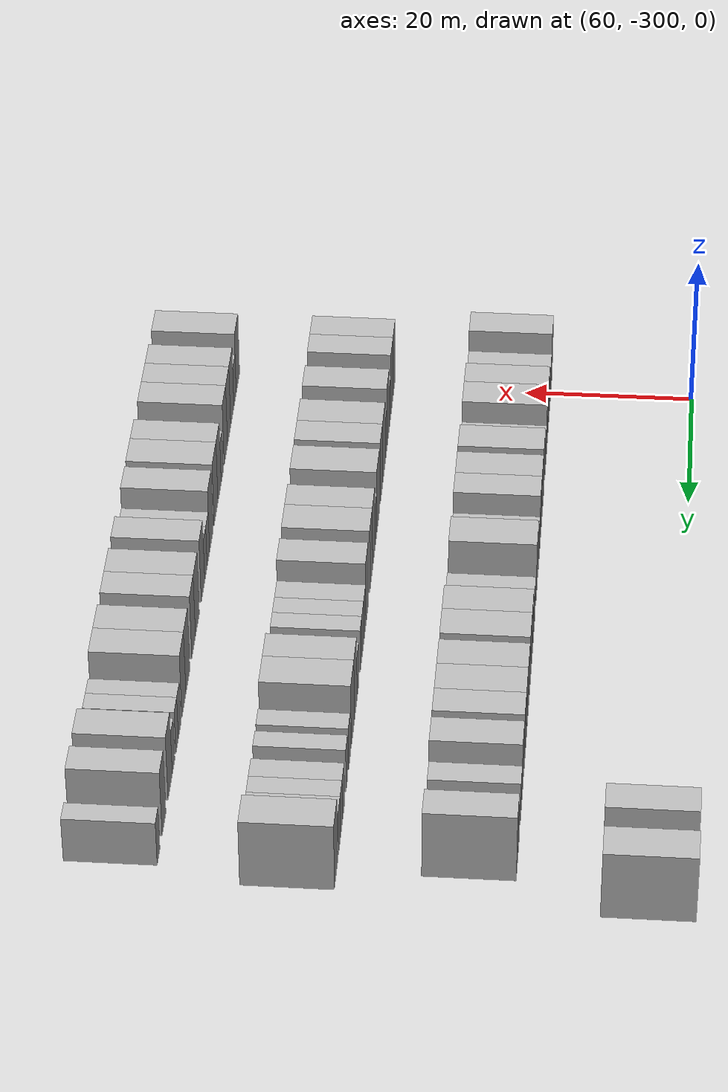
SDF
<sdf version="1.6">
 <world name="default">
  <model name="building_390">
   <static>1</static>
   <pose>63.0000 -218.8169 0 0.000000 0.000000 0.000000</pose>
   <link name="link">
    <pose>0 0 4.50 0 0 0</pose>
    <collision name="collision"><geometry><box><size>10.0000 3.7445 9.0000</size></box></geometry></collision>
    <visual name="visual">
     <cast_shadows>0</cast_shadows>
     <geometry><box><size>10.0000 3.7445 9.0000</size></box></geometry>
     <material>
      <script>
       <uri>model://HANNAS_wall/materials/scripts</uri>
       <uri>model://HANNAS_wall/materials/textures</uri>
       <name>vrc/HANNAS_wall</name>
      </script>
     </material>
    </visual>
   </link>
  </model>
  <model name="building_391">
   <static>1</static>
   <pose>63.0000 -215.5058 0 0.000000 0.000000 0.000000</pose>
   <link name="link">
    <pose>0 0 3.00 0 0 0</pose>
    <collision name="collision"><geometry><box><size>10.0000 2.8776 6.0000</size></box></geometry></collision>
    <visual name="visual">
     <cast_shadows>0</cast_shadows>
     <geometry><box><size>10.0000 2.8776 6.0000</size></box></geometry>
     <material>
      <script>
       <uri>model://HANNAS_wall/materials/scripts</uri>
       <uri>model://HANNAS_wall/materials/textures</uri>
       <name>vrc/HANNAS_wall</name>
      </script>
     </material>
    </visual>
   </link>
  </model>
  <model name="building_392">
   <static>1</static>
   <pose>63.0000 -211.9259 0 0.000000 0.000000 0.000000</pose>
   <link name="link">
    <pose>0 0 4.50 0 0 0</pose>
    <collision name="collision"><geometry><box><size>10.0000 4.2823 9.0000</size></box></geometry></collision>
    <visual name="visual">
     <cast_shadows>0</cast_shadows>
     <geometry><box><size>10.0000 4.2823 9.0000</size></box></geometry>
     <material>
      <script>
       <uri>model://HANNAS_wall/materials/scripts</uri>
       <uri>model://HANNAS_wall/materials/textures</uri>
       <name>vrc/HANNAS_wall</name>
      </script>
     </material>
    </visual>
   </link>
  </model>
  <model name="building_545">
   <static>1</static>
   <pose>82.0000 -301.8834 0 0.000000 0.000000 0.000000</pose>
   <link name="link">
    <pose>0 0 4.50 0 0 0</pose>
    <collision name="collision"><geometry><box><size>10.0000 3.8619 9.0000</size></box></geometry></collision>
    <visual name="visual">
     <cast_shadows>0</cast_shadows>
     <geometry><box><size>10.0000 3.8619 9.0000</size></box></geometry>
     <material>
      <script>
       <uri>model://HANNAS_wall/materials/scripts</uri>
       <uri>model://HANNAS_wall/materials/textures</uri>
       <name>vrc/HANNAS_wall</name>
      </script>
     </material>
    </visual>
   </link>
  </model>
  <model name="building_546">
   <static>1</static>
   <pose>82.0000 -298.6246 0 0.000000 0.000000 0.000000</pose>
   <link name="link">
    <pose>0 0 3.00 0 0 0</pose>
    <collision name="collision"><geometry><box><size>10.0000 2.6557 6.0000</size></box></geometry></collision>
    <visual name="visual">
     <cast_shadows>0</cast_shadows>
     <geometry><box><size>10.0000 2.6557 6.0000</size></box></geometry>
     <material>
      <script>
       <uri>model://HANNAS_wall/materials/scripts</uri>
       <uri>model://HANNAS_wall/materials/textures</uri>
       <name>vrc/HANNAS_wall</name>
      </script>
     </material>
    </visual>
   </link>
  </model>
  <model name="building_547">
   <static>1</static>
   <pose>82.0000 -294.8843 0 0.000000 0.000000 0.000000</pose>
   <link name="link">
    <pose>0 0 3.00 0 0 0</pose>
    <collision name="collision"><geometry><box><size>10.0000 2.8249 6.0000</size></box></geometry></collision>
    <visual name="visual">
     <cast_shadows>0</cast_shadows>
     <geometry><box><size>10.0000 2.8249 6.0000</size></box></geometry>
     <material>
      <script>
       <uri>model://HANNAS_wall/materials/scripts</uri>
       <uri>model://HANNAS_wall/materials/textures</uri>
       <name>vrc/HANNAS_wall</name>
      </script>
     </material>
    </visual>
   </link>
  </model>
  <model name="building_548">
   <static>1</static>
   <pose>82.0000 -291.6672 0 0.000000 0.000000 0.000000</pose>
   <link name="link">
    <pose>0 0 4.50 0 0 0</pose>
    <collision name="collision"><geometry><box><size>10.0000 3.6095 9.0000</size></box></geometry></collision>
    <visual name="visual">
     <cast_shadows>0</cast_shadows>
     <geometry><box><size>10.0000 3.6095 9.0000</size></box></geometry>
     <material>
      <script>
       <uri>model://HANNAS_wall/materials/scripts</uri>
       <uri>model://HANNAS_wall/materials/textures</uri>
       <name>vrc/HANNAS_wall</name>
      </script>
     </material>
    </visual>
   </link>
  </model>
  <model name="building_549">
   <static>1</static>
   <pose>82.0000 -287.8547 0 0.000000 0.000000 0.000000</pose>
   <link name="link">
    <pose>0 0 4.50 0 0 0</pose>
    <collision name="collision"><geometry><box><size>10.0000 4.0154 9.0000</size></box></geometry></collision>
    <visual name="visual">
     <cast_shadows>0</cast_shadows>
     <geometry><box><size>10.0000 4.0154 9.0000</size></box></geometry>
     <material>
      <script>
       <uri>model://HANNAS_wall/materials/scripts</uri>
       <uri>model://HANNAS_wall/materials/textures</uri>
       <name>vrc/HANNAS_wall</name>
      </script>
     </material>
    </visual>
   </link>
  </model>
  <model name="building_550">
   <static>1</static>
   <pose>82.0000 -284.6406 0 0.000000 0.000000 0.000000</pose>
   <link name="link">
    <pose>0 0 3.00 0 0 0</pose>
    <collision name="collision"><geometry><box><size>10.0000 2.4128 6.0000</size></box></geometry></collision>
    <visual name="visual">
     <cast_shadows>0</cast_shadows>
     <geometry><box><size>10.0000 2.4128 6.0000</size></box></geometry>
     <material>
      <script>
       <uri>model://HANNAS_wall/materials/scripts</uri>
       <uri>model://HANNAS_wall/materials/textures</uri>
       <name>vrc/HANNAS_wall</name>
      </script>
     </material>
    </visual>
   </link>
  </model>
  <model name="building_551">
   <static>1</static>
   <pose>82.0000 -279.3819 0 0.000000 0.000000 0.000000</pose>
   <link name="link">
    <pose>0 0 4.50 0 0 0</pose>
    <collision name="collision"><geometry><box><size>10.0000 4.1046 9.0000</size></box></geometry></collision>
    <visual name="visual">
     <cast_shadows>0</cast_shadows>
     <geometry><box><size>10.0000 4.1046 9.0000</size></box></geometry>
     <material>
      <script>
       <uri>model://HANNAS_wall/materials/scripts</uri>
       <uri>model://HANNAS_wall/materials/textures</uri>
       <name>vrc/HANNAS_wall</name>
      </script>
     </material>
    </visual>
   </link>
  </model>
  <model name="building_552">
   <static>1</static>
   <pose>82.0000 -274.3489 0 0.000000 0.000000 0.000000</pose>
   <link name="link">
    <pose>0 0 4.50 0 0 0</pose>
    <collision name="collision"><geometry><box><size>10.0000 3.9613 9.0000</size></box></geometry></collision>
    <visual name="visual">
     <cast_shadows>0</cast_shadows>
     <geometry><box><size>10.0000 3.9613 9.0000</size></box></geometry>
     <material>
      <script>
       <uri>model://HANNAS_wall/materials/scripts</uri>
       <uri>model://HANNAS_wall/materials/textures</uri>
       <name>vrc/HANNAS_wall</name>
      </script>
     </material>
    </visual>
   </link>
  </model>
  <model name="building_553">
   <static>1</static>
   <pose>82.0000 -270.5108 0 0.000000 0.000000 0.000000</pose>
   <link name="link">
    <pose>0 0 4.50 0 0 0</pose>
    <collision name="collision"><geometry><box><size>10.0000 3.7148 9.0000</size></box></geometry></collision>
    <visual name="visual">
     <cast_shadows>0</cast_shadows>
     <geometry><box><size>10.0000 3.7148 9.0000</size></box></geometry>
     <material>
      <script>
       <uri>model://HANNAS_wall/materials/scripts</uri>
       <uri>model://HANNAS_wall/materials/textures</uri>
       <name>vrc/HANNAS_wall</name>
      </script>
     </material>
    </visual>
   </link>
  </model>
  <model name="building_554">
   <static>1</static>
   <pose>82.0000 -267.4466 0 0.000000 0.000000 0.000000</pose>
   <link name="link">
    <pose>0 0 3.00 0 0 0</pose>
    <collision name="collision"><geometry><box><size>10.0000 2.4137 6.0000</size></box></geometry></collision>
    <visual name="visual">
     <cast_shadows>0</cast_shadows>
     <geometry><box><size>10.0000 2.4137 6.0000</size></box></geometry>
     <material>
      <script>
       <uri>model://HANNAS_wall/materials/scripts</uri>
       <uri>model://HANNAS_wall/materials/textures</uri>
       <name>vrc/HANNAS_wall</name>
      </script>
     </material>
    </visual>
   </link>
  </model>
  <model name="building_555">
   <static>1</static>
   <pose>82.0000 -262.0248 0 0.000000 0.000000 0.000000</pose>
   <link name="link">
    <pose>0 0 4.50 0 0 0</pose>
    <collision name="collision"><geometry><box><size>10.0000 4.4298 9.0000</size></box></geometry></collision>
    <visual name="visual">
     <cast_shadows>0</cast_shadows>
     <geometry><box><size>10.0000 4.4298 9.0000</size></box></geometry>
     <material>
      <script>
       <uri>model://HANNAS_wall/materials/scripts</uri>
       <uri>model://HANNAS_wall/materials/textures</uri>
       <name>vrc/HANNAS_wall</name>
      </script>
     </material>
    </visual>
   </link>
  </model>
  <model name="building_556">
   <static>1</static>
   <pose>82.0000 -256.3978 0 0.000000 0.000000 0.000000</pose>
   <link name="link">
    <pose>0 0 3.00 0 0 0</pose>
    <collision name="collision"><geometry><box><size>10.0000 2.8242 6.0000</size></box></geometry></collision>
    <visual name="visual">
     <cast_shadows>0</cast_shadows>
     <geometry><box><size>10.0000 2.8242 6.0000</size></box></geometry>
     <material>
      <script>
       <uri>model://HANNAS_wall/materials/scripts</uri>
       <uri>model://HANNAS_wall/materials/textures</uri>
       <name>vrc/HANNAS_wall</name>
      </script>
     </material>
    </visual>
   </link>
  </model>
  <model name="building_557">
   <static>1</static>
   <pose>82.0000 -253.5128 0 0.000000 0.000000 0.000000</pose>
   <link name="link">
    <pose>0 0 3.00 0 0 0</pose>
    <collision name="collision"><geometry><box><size>10.0000 2.9459 6.0000</size></box></geometry></collision>
    <visual name="visual">
     <cast_shadows>0</cast_shadows>
     <geometry><box><size>10.0000 2.9459 6.0000</size></box></geometry>
     <material>
      <script>
       <uri>model://HANNAS_wall/materials/scripts</uri>
       <uri>model://HANNAS_wall/materials/textures</uri>
       <name>vrc/HANNAS_wall</name>
      </script>
     </material>
    </visual>
   </link>
  </model>
  <model name="building_558">
   <static>1</static>
   <pose>82.0000 -250.0247 0 0.000000 0.000000 0.000000</pose>
   <link name="link">
    <pose>0 0 4.50 0 0 0</pose>
    <collision name="collision"><geometry><box><size>10.0000 4.0303 9.0000</size></box></geometry></collision>
    <visual name="visual">
     <cast_shadows>0</cast_shadows>
     <geometry><box><size>10.0000 4.0303 9.0000</size></box></geometry>
     <material>
      <script>
       <uri>model://HANNAS_wall/materials/scripts</uri>
       <uri>model://HANNAS_wall/materials/textures</uri>
       <name>vrc/HANNAS_wall</name>
      </script>
     </material>
    </visual>
   </link>
  </model>
  <model name="building_559">
   <static>1</static>
   <pose>82.0000 -245.8804 0 0.000000 0.000000 0.000000</pose>
   <link name="link">
    <pose>0 0 4.50 0 0 0</pose>
    <collision name="collision"><geometry><box><size>10.0000 4.2583 9.0000</size></box></geometry></collision>
    <visual name="visual">
     <cast_shadows>0</cast_shadows>
     <geometry><box><size>10.0000 4.2583 9.0000</size></box></geometry>
     <material>
      <script>
       <uri>model://HANNAS_wall/materials/scripts</uri>
       <uri>model://HANNAS_wall/materials/textures</uri>
       <name>vrc/HANNAS_wall</name>
      </script>
     </material>
    </visual>
   </link>
  </model>
  <model name="building_560">
   <static>1</static>
   <pose>82.0000 -240.7354 0 0.000000 0.000000 0.000000</pose>
   <link name="link">
    <pose>0 0 4.50 0 0 0</pose>
    <collision name="collision"><geometry><box><size>10.0000 4.0318 9.0000</size></box></geometry></collision>
    <visual name="visual">
     <cast_shadows>0</cast_shadows>
     <geometry><box><size>10.0000 4.0318 9.0000</size></box></geometry>
     <material>
      <script>
       <uri>model://HANNAS_wall/materials/scripts</uri>
       <uri>model://HANNAS_wall/materials/textures</uri>
       <name>vrc/HANNAS_wall</name>
      </script>
     </material>
    </visual>
   </link>
  </model>
  <model name="building_561">
   <static>1</static>
   <pose>82.0000 -236.6474 0 0.000000 0.000000 0.000000</pose>
   <link name="link">
    <pose>0 0 4.50 0 0 0</pose>
    <collision name="collision"><geometry><box><size>10.0000 4.1443 9.0000</size></box></geometry></collision>
    <visual name="visual">
     <cast_shadows>0</cast_shadows>
     <geometry><box><size>10.0000 4.1443 9.0000</size></box></geometry>
     <material>
      <script>
       <uri>model://HANNAS_wall/materials/scripts</uri>
       <uri>model://HANNAS_wall/materials/textures</uri>
       <name>vrc/HANNAS_wall</name>
      </script>
     </material>
    </visual>
   </link>
  </model>
  <model name="building_562">
   <static>1</static>
   <pose>82.0000 -232.7331 0 0.000000 0.000000 0.000000</pose>
   <link name="link">
    <pose>0 0 4.50 0 0 0</pose>
    <collision name="collision"><geometry><box><size>10.0000 3.6843 9.0000</size></box></geometry></collision>
    <visual name="visual">
     <cast_shadows>0</cast_shadows>
     <geometry><box><size>10.0000 3.6843 9.0000</size></box></geometry>
     <material>
      <script>
       <uri>model://HANNAS_wall/materials/scripts</uri>
       <uri>model://HANNAS_wall/materials/textures</uri>
       <name>vrc/HANNAS_wall</name>
      </script>
     </material>
    </visual>
   </link>
  </model>
  <model name="building_563">
   <static>1</static>
   <pose>82.0000 -227.9724 0 0.000000 0.000000 0.000000</pose>
   <link name="link">
    <pose>0 0 4.50 0 0 0</pose>
    <collision name="collision"><geometry><box><size>10.0000 3.8371 9.0000</size></box></geometry></collision>
    <visual name="visual">
     <cast_shadows>0</cast_shadows>
     <geometry><box><size>10.0000 3.8371 9.0000</size></box></geometry>
     <material>
      <script>
       <uri>model://HANNAS_wall/materials/scripts</uri>
       <uri>model://HANNAS_wall/materials/textures</uri>
       <name>vrc/HANNAS_wall</name>
      </script>
     </material>
    </visual>
   </link>
  </model>
  <model name="building_564">
   <static>1</static>
   <pose>82.0000 -224.6043 0 0.000000 0.000000 0.000000</pose>
   <link name="link">
    <pose>0 0 3.00 0 0 0</pose>
    <collision name="collision"><geometry><box><size>10.0000 2.8990 6.0000</size></box></geometry></collision>
    <visual name="visual">
     <cast_shadows>0</cast_shadows>
     <geometry><box><size>10.0000 2.8990 6.0000</size></box></geometry>
     <material>
      <script>
       <uri>model://HANNAS_wall/materials/scripts</uri>
       <uri>model://HANNAS_wall/materials/textures</uri>
       <name>vrc/HANNAS_wall</name>
      </script>
     </material>
    </visual>
   </link>
  </model>
  <model name="building_565">
   <static>1</static>
   <pose>82.0000 -219.7673 0 0.000000 0.000000 0.000000</pose>
   <link name="link">
    <pose>0 0 3.00 0 0 0</pose>
    <collision name="collision"><geometry><box><size>10.0000 2.7750 6.0000</size></box></geometry></collision>
    <visual name="visual">
     <cast_shadows>0</cast_shadows>
     <geometry><box><size>10.0000 2.7750 6.0000</size></box></geometry>
     <material>
      <script>
       <uri>model://HANNAS_wall/materials/scripts</uri>
       <uri>model://HANNAS_wall/materials/textures</uri>
       <name>vrc/HANNAS_wall</name>
      </script>
     </material>
    </visual>
   </link>
  </model>
  <model name="building_566">
   <static>1</static>
   <pose>82.0000 -216.4992 0 0.000000 0.000000 0.000000</pose>
   <link name="link">
    <pose>0 0 4.50 0 0 0</pose>
    <collision name="collision"><geometry><box><size>10.0000 3.7611 9.0000</size></box></geometry></collision>
    <visual name="visual">
     <cast_shadows>0</cast_shadows>
     <geometry><box><size>10.0000 3.7611 9.0000</size></box></geometry>
     <material>
      <script>
       <uri>model://HANNAS_wall/materials/scripts</uri>
       <uri>model://HANNAS_wall/materials/textures</uri>
       <name>vrc/HANNAS_wall</name>
      </script>
     </material>
    </visual>
   </link>
  </model>
  <model name="building_717">
   <static>1</static>
   <pose>101.0000 -299.8216 0 0.000000 0.000000 0.000000</pose>
   <link name="link">
    <pose>0 0 4.50 0 0 0</pose>
    <collision name="collision"><geometry><box><size>10.0000 3.7258 9.0000</size></box></geometry></collision>
    <visual name="visual">
     <cast_shadows>0</cast_shadows>
     <geometry><box><size>10.0000 3.7258 9.0000</size></box></geometry>
     <material>
      <script>
       <uri>model://HANNAS_wall/materials/scripts</uri>
       <uri>model://HANNAS_wall/materials/textures</uri>
       <name>vrc/HANNAS_wall</name>
      </script>
     </material>
    </visual>
   </link>
  </model>
  <model name="building_718">
   <static>1</static>
   <pose>101.0000 -296.1491 0 0.000000 0.000000 0.000000</pose>
   <link name="link">
    <pose>0 0 4.50 0 0 0</pose>
    <collision name="collision"><geometry><box><size>10.0000 3.6192 9.0000</size></box></geometry></collision>
    <visual name="visual">
     <cast_shadows>0</cast_shadows>
     <geometry><box><size>10.0000 3.6192 9.0000</size></box></geometry>
     <material>
      <script>
       <uri>model://HANNAS_wall/materials/scripts</uri>
       <uri>model://HANNAS_wall/materials/textures</uri>
       <name>vrc/HANNAS_wall</name>
      </script>
     </material>
    </visual>
   </link>
  </model>
  <model name="building_719">
   <static>1</static>
   <pose>101.0000 -292.9728 0 0.000000 0.000000 0.000000</pose>
   <link name="link">
    <pose>0 0 3.00 0 0 0</pose>
    <collision name="collision"><geometry><box><size>10.0000 2.7334 6.0000</size></box></geometry></collision>
    <visual name="visual">
     <cast_shadows>0</cast_shadows>
     <geometry><box><size>10.0000 2.7334 6.0000</size></box></geometry>
     <material>
      <script>
       <uri>model://HANNAS_wall/materials/scripts</uri>
       <uri>model://HANNAS_wall/materials/textures</uri>
       <name>vrc/HANNAS_wall</name>
      </script>
     </material>
    </visual>
   </link>
  </model>
  <model name="building_720">
   <static>1</static>
   <pose>101.0000 -289.6041 0 0.000000 0.000000 0.000000</pose>
   <link name="link">
    <pose>0 0 4.50 0 0 0</pose>
    <collision name="collision"><geometry><box><size>10.0000 4.0039 9.0000</size></box></geometry></collision>
    <visual name="visual">
     <cast_shadows>0</cast_shadows>
     <geometry><box><size>10.0000 4.0039 9.0000</size></box></geometry>
     <material>
      <script>
       <uri>model://HANNAS_wall/materials/scripts</uri>
       <uri>model://HANNAS_wall/materials/textures</uri>
       <name>vrc/HANNAS_wall</name>
      </script>
     </material>
    </visual>
   </link>
  </model>
  <model name="building_721">
   <static>1</static>
   <pose>101.0000 -286.3302 0 0.000000 0.000000 0.000000</pose>
   <link name="link">
    <pose>0 0 3.00 0 0 0</pose>
    <collision name="collision"><geometry><box><size>10.0000 2.5441 6.0000</size></box></geometry></collision>
    <visual name="visual">
     <cast_shadows>0</cast_shadows>
     <geometry><box><size>10.0000 2.5441 6.0000</size></box></geometry>
     <material>
      <script>
       <uri>model://HANNAS_wall/materials/scripts</uri>
       <uri>model://HANNAS_wall/materials/textures</uri>
       <name>vrc/HANNAS_wall</name>
      </script>
     </material>
    </visual>
   </link>
  </model>
  <model name="building_722">
   <static>1</static>
   <pose>101.0000 -282.9819 0 0.000000 0.000000 0.000000</pose>
   <link name="link">
    <pose>0 0 4.50 0 0 0</pose>
    <collision name="collision"><geometry><box><size>10.0000 4.1524 9.0000</size></box></geometry></collision>
    <visual name="visual">
     <cast_shadows>0</cast_shadows>
     <geometry><box><size>10.0000 4.1524 9.0000</size></box></geometry>
     <material>
      <script>
       <uri>model://HANNAS_wall/materials/scripts</uri>
       <uri>model://HANNAS_wall/materials/textures</uri>
       <name>vrc/HANNAS_wall</name>
      </script>
     </material>
    </visual>
   </link>
  </model>
  <model name="building_723">
   <static>1</static>
   <pose>101.0000 -279.0346 0 0.000000 0.000000 0.000000</pose>
   <link name="link">
    <pose>0 0 4.50 0 0 0</pose>
    <collision name="collision"><geometry><box><size>10.0000 3.7423 9.0000</size></box></geometry></collision>
    <visual name="visual">
     <cast_shadows>0</cast_shadows>
     <geometry><box><size>10.0000 3.7423 9.0000</size></box></geometry>
     <material>
      <script>
       <uri>model://HANNAS_wall/materials/scripts</uri>
       <uri>model://HANNAS_wall/materials/textures</uri>
       <name>vrc/HANNAS_wall</name>
      </script>
     </material>
    </visual>
   </link>
  </model>
  <model name="building_724">
   <static>1</static>
   <pose>101.0000 -273.9274 0 0.000000 0.000000 0.000000</pose>
   <link name="link">
    <pose>0 0 4.50 0 0 0</pose>
    <collision name="collision"><geometry><box><size>10.0000 4.4721 9.0000</size></box></geometry></collision>
    <visual name="visual">
     <cast_shadows>0</cast_shadows>
     <geometry><box><size>10.0000 4.4721 9.0000</size></box></geometry>
     <material>
      <script>
       <uri>model://HANNAS_wall/materials/scripts</uri>
       <uri>model://HANNAS_wall/materials/textures</uri>
       <name>vrc/HANNAS_wall</name>
      </script>
     </material>
    </visual>
   </link>
  </model>
  <model name="building_725">
   <static>1</static>
   <pose>101.0000 -270.2538 0 0.000000 0.000000 0.000000</pose>
   <link name="link">
    <pose>0 0 3.00 0 0 0</pose>
    <collision name="collision"><geometry><box><size>10.0000 2.8752 6.0000</size></box></geometry></collision>
    <visual name="visual">
     <cast_shadows>0</cast_shadows>
     <geometry><box><size>10.0000 2.8752 6.0000</size></box></geometry>
     <material>
      <script>
       <uri>model://HANNAS_wall/materials/scripts</uri>
       <uri>model://HANNAS_wall/materials/textures</uri>
       <name>vrc/HANNAS_wall</name>
      </script>
     </material>
    </visual>
   </link>
  </model>
  <model name="building_726">
   <static>1</static>
   <pose>101.0000 -266.9697 0 0.000000 0.000000 0.000000</pose>
   <link name="link">
    <pose>0 0 4.50 0 0 0</pose>
    <collision name="collision"><geometry><box><size>10.0000 3.6930 9.0000</size></box></geometry></collision>
    <visual name="visual">
     <cast_shadows>0</cast_shadows>
     <geometry><box><size>10.0000 3.6930 9.0000</size></box></geometry>
     <material>
      <script>
       <uri>model://HANNAS_wall/materials/scripts</uri>
       <uri>model://HANNAS_wall/materials/textures</uri>
       <name>vrc/HANNAS_wall</name>
      </script>
     </material>
    </visual>
   </link>
  </model>
  <model name="building_727">
   <static>1</static>
   <pose>101.0000 -263.0123 0 0.000000 0.000000 0.000000</pose>
   <link name="link">
    <pose>0 0 4.50 0 0 0</pose>
    <collision name="collision"><geometry><box><size>10.0000 4.2217 9.0000</size></box></geometry></collision>
    <visual name="visual">
     <cast_shadows>0</cast_shadows>
     <geometry><box><size>10.0000 4.2217 9.0000</size></box></geometry>
     <material>
      <script>
       <uri>model://HANNAS_wall/materials/scripts</uri>
       <uri>model://HANNAS_wall/materials/textures</uri>
       <name>vrc/HANNAS_wall</name>
      </script>
     </material>
    </visual>
   </link>
  </model>
  <model name="building_728">
   <static>1</static>
   <pose>101.0000 -256.9766 0 0.000000 0.000000 0.000000</pose>
   <link name="link">
    <pose>0 0 4.50 0 0 0</pose>
    <collision name="collision"><geometry><box><size>10.0000 3.8498 9.0000</size></box></geometry></collision>
    <visual name="visual">
     <cast_shadows>0</cast_shadows>
     <geometry><box><size>10.0000 3.8498 9.0000</size></box></geometry>
     <material>
      <script>
       <uri>model://HANNAS_wall/materials/scripts</uri>
       <uri>model://HANNAS_wall/materials/textures</uri>
       <name>vrc/HANNAS_wall</name>
      </script>
     </material>
    </visual>
   </link>
  </model>
  <model name="building_729">
   <static>1</static>
   <pose>101.0000 -253.6077 0 0.000000 0.000000 0.000000</pose>
   <link name="link">
    <pose>0 0 3.00 0 0 0</pose>
    <collision name="collision"><geometry><box><size>10.0000 2.8880 6.0000</size></box></geometry></collision>
    <visual name="visual">
     <cast_shadows>0</cast_shadows>
     <geometry><box><size>10.0000 2.8880 6.0000</size></box></geometry>
     <material>
      <script>
       <uri>model://HANNAS_wall/materials/scripts</uri>
       <uri>model://HANNAS_wall/materials/textures</uri>
       <name>vrc/HANNAS_wall</name>
      </script>
     </material>
    </visual>
   </link>
  </model>
  <model name="building_730">
   <static>1</static>
   <pose>101.0000 -250.8559 0 0.000000 0.000000 0.000000</pose>
   <link name="link">
    <pose>0 0 3.00 0 0 0</pose>
    <collision name="collision"><geometry><box><size>10.0000 2.6156 6.0000</size></box></geometry></collision>
    <visual name="visual">
     <cast_shadows>0</cast_shadows>
     <geometry><box><size>10.0000 2.6156 6.0000</size></box></geometry>
     <material>
      <script>
       <uri>model://HANNAS_wall/materials/scripts</uri>
       <uri>model://HANNAS_wall/materials/textures</uri>
       <name>vrc/HANNAS_wall</name>
      </script>
     </material>
    </visual>
   </link>
  </model>
  <model name="building_731">
   <static>1</static>
   <pose>101.0000 -248.2745 0 0.000000 0.000000 0.000000</pose>
   <link name="link">
    <pose>0 0 3.00 0 0 0</pose>
    <collision name="collision"><geometry><box><size>10.0000 2.5471 6.0000</size></box></geometry></collision>
    <visual name="visual">
     <cast_shadows>0</cast_shadows>
     <geometry><box><size>10.0000 2.5471 6.0000</size></box></geometry>
     <material>
      <script>
       <uri>model://HANNAS_wall/materials/scripts</uri>
       <uri>model://HANNAS_wall/materials/textures</uri>
       <name>vrc/HANNAS_wall</name>
      </script>
     </material>
    </visual>
   </link>
  </model>
  <model name="building_732">
   <static>1</static>
   <pose>101.0000 -243.6894 0 0.000000 0.000000 0.000000</pose>
   <link name="link">
    <pose>0 0 3.00 0 0 0</pose>
    <collision name="collision"><geometry><box><size>10.0000 2.6232 6.0000</size></box></geometry></collision>
    <visual name="visual">
     <cast_shadows>0</cast_shadows>
     <geometry><box><size>10.0000 2.6232 6.0000</size></box></geometry>
     <material>
      <script>
       <uri>model://HANNAS_wall/materials/scripts</uri>
       <uri>model://HANNAS_wall/materials/textures</uri>
       <name>vrc/HANNAS_wall</name>
      </script>
     </material>
    </visual>
   </link>
  </model>
  <model name="building_733">
   <static>1</static>
   <pose>101.0000 -240.4709 0 0.000000 0.000000 0.000000</pose>
   <link name="link">
    <pose>0 0 4.50 0 0 0</pose>
    <collision name="collision"><geometry><box><size>10.0000 3.8138 9.0000</size></box></geometry></collision>
    <visual name="visual">
     <cast_shadows>0</cast_shadows>
     <geometry><box><size>10.0000 3.8138 9.0000</size></box></geometry>
     <material>
      <script>
       <uri>model://HANNAS_wall/materials/scripts</uri>
       <uri>model://HANNAS_wall/materials/textures</uri>
       <name>vrc/HANNAS_wall</name>
      </script>
     </material>
    </visual>
   </link>
  </model>
  <model name="building_734">
   <static>1</static>
   <pose>101.0000 -236.3862 0 0.000000 0.000000 0.000000</pose>
   <link name="link">
    <pose>0 0 4.50 0 0 0</pose>
    <collision name="collision"><geometry><box><size>10.0000 4.3557 9.0000</size></box></geometry></collision>
    <visual name="visual">
     <cast_shadows>0</cast_shadows>
     <geometry><box><size>10.0000 4.3557 9.0000</size></box></geometry>
     <material>
      <script>
       <uri>model://HANNAS_wall/materials/scripts</uri>
       <uri>model://HANNAS_wall/materials/textures</uri>
       <name>vrc/HANNAS_wall</name>
      </script>
     </material>
    </visual>
   </link>
  </model>
  <model name="building_735">
   <static>1</static>
   <pose>101.0000 -231.9264 0 0.000000 0.000000 0.000000</pose>
   <link name="link">
    <pose>0 0 3.00 0 0 0</pose>
    <collision name="collision"><geometry><box><size>10.0000 2.5638 6.0000</size></box></geometry></collision>
    <visual name="visual">
     <cast_shadows>0</cast_shadows>
     <geometry><box><size>10.0000 2.5638 6.0000</size></box></geometry>
     <material>
      <script>
       <uri>model://HANNAS_wall/materials/scripts</uri>
       <uri>model://HANNAS_wall/materials/textures</uri>
       <name>vrc/HANNAS_wall</name>
      </script>
     </material>
    </visual>
   </link>
  </model>
  <model name="building_736">
   <static>1</static>
   <pose>101.0000 -228.4159 0 0.000000 0.000000 0.000000</pose>
   <link name="link">
    <pose>0 0 3.00 0 0 0</pose>
    <collision name="collision"><geometry><box><size>10.0000 2.4572 6.0000</size></box></geometry></collision>
    <visual name="visual">
     <cast_shadows>0</cast_shadows>
     <geometry><box><size>10.0000 2.4572 6.0000</size></box></geometry>
     <material>
      <script>
       <uri>model://HANNAS_wall/materials/scripts</uri>
       <uri>model://HANNAS_wall/materials/textures</uri>
       <name>vrc/HANNAS_wall</name>
      </script>
     </material>
    </visual>
   </link>
  </model>
  <model name="building_737">
   <static>1</static>
   <pose>101.0000 -223.7897 0 0.000000 0.000000 0.000000</pose>
   <link name="link">
    <pose>0 0 3.00 0 0 0</pose>
    <collision name="collision"><geometry><box><size>10.0000 2.7953 6.0000</size></box></geometry></collision>
    <visual name="visual">
     <cast_shadows>0</cast_shadows>
     <geometry><box><size>10.0000 2.7953 6.0000</size></box></geometry>
     <material>
      <script>
       <uri>model://HANNAS_wall/materials/scripts</uri>
       <uri>model://HANNAS_wall/materials/textures</uri>
       <name>vrc/HANNAS_wall</name>
      </script>
     </material>
    </visual>
   </link>
  </model>
  <model name="building_738">
   <static>1</static>
   <pose>101.0000 -221.1342 0 0.000000 0.000000 0.000000</pose>
   <link name="link">
    <pose>0 0 3.00 0 0 0</pose>
    <collision name="collision"><geometry><box><size>10.0000 2.5158 6.0000</size></box></geometry></collision>
    <visual name="visual">
     <cast_shadows>0</cast_shadows>
     <geometry><box><size>10.0000 2.5158 6.0000</size></box></geometry>
     <material>
      <script>
       <uri>model://HANNAS_wall/materials/scripts</uri>
       <uri>model://HANNAS_wall/materials/textures</uri>
       <name>vrc/HANNAS_wall</name>
      </script>
     </material>
    </visual>
   </link>
  </model>
  <model name="building_739">
   <static>1</static>
   <pose>101.0000 -218.5226 0 0.000000 0.000000 0.000000</pose>
   <link name="link">
    <pose>0 0 3.00 0 0 0</pose>
    <collision name="collision"><geometry><box><size>10.0000 2.7073 6.0000</size></box></geometry></collision>
    <visual name="visual">
     <cast_shadows>0</cast_shadows>
     <geometry><box><size>10.0000 2.7073 6.0000</size></box></geometry>
     <material>
      <script>
       <uri>model://HANNAS_wall/materials/scripts</uri>
       <uri>model://HANNAS_wall/materials/textures</uri>
       <name>vrc/HANNAS_wall</name>
      </script>
     </material>
    </visual>
   </link>
  </model>
  <model name="building_740">
   <static>1</static>
   <pose>101.0000 -214.0468 0 0.000000 0.000000 0.000000</pose>
   <link name="link">
    <pose>0 0 4.50 0 0 0</pose>
    <collision name="collision"><geometry><box><size>10.0000 4.2444 9.0000</size></box></geometry></collision>
    <visual name="visual">
     <cast_shadows>0</cast_shadows>
     <geometry><box><size>10.0000 4.2444 9.0000</size></box></geometry>
     <material>
      <script>
       <uri>model://HANNAS_wall/materials/scripts</uri>
       <uri>model://HANNAS_wall/materials/textures</uri>
       <name>vrc/HANNAS_wall</name>
      </script>
     </material>
    </visual>
   </link>
  </model>
  <model name="building_900">
   <static>1</static>
   <pose>120.0000 -299.3341 0 0.000000 0.000000 0.000000</pose>
   <link name="link">
    <pose>0 0 4.50 0 0 0</pose>
    <collision name="collision"><geometry><box><size>10.0000 4.2097 9.0000</size></box></geometry></collision>
    <visual name="visual">
     <cast_shadows>0</cast_shadows>
     <geometry><box><size>10.0000 4.2097 9.0000</size></box></geometry>
     <material>
      <script>
       <uri>model://HANNAS_wall/materials/scripts</uri>
       <uri>model://HANNAS_wall/materials/textures</uri>
       <name>vrc/HANNAS_wall</name>
      </script>
     </material>
    </visual>
   </link>
  </model>
  <model name="building_901">
   <static>1</static>
   <pose>120.0000 -295.8736 0 0.000000 0.000000 0.000000</pose>
   <link name="link">
    <pose>0 0 3.00 0 0 0</pose>
    <collision name="collision"><geometry><box><size>10.0000 2.7113 6.0000</size></box></geometry></collision>
    <visual name="visual">
     <cast_shadows>0</cast_shadows>
     <geometry><box><size>10.0000 2.7113 6.0000</size></box></geometry>
     <material>
      <script>
       <uri>model://HANNAS_wall/materials/scripts</uri>
       <uri>model://HANNAS_wall/materials/textures</uri>
       <name>vrc/HANNAS_wall</name>
      </script>
     </material>
    </visual>
   </link>
  </model>
  <model name="building_902">
   <static>1</static>
   <pose>120.0000 -292.6346 0 0.000000 0.000000 0.000000</pose>
   <link name="link">
    <pose>0 0 4.50 0 0 0</pose>
    <collision name="collision"><geometry><box><size>10.0000 3.7667 9.0000</size></box></geometry></collision>
    <visual name="visual">
     <cast_shadows>0</cast_shadows>
     <geometry><box><size>10.0000 3.7667 9.0000</size></box></geometry>
     <material>
      <script>
       <uri>model://HANNAS_wall/materials/scripts</uri>
       <uri>model://HANNAS_wall/materials/textures</uri>
       <name>vrc/HANNAS_wall</name>
      </script>
     </material>
    </visual>
   </link>
  </model>
  <model name="building_903">
   <static>1</static>
   <pose>120.0000 -288.8969 0 0.000000 0.000000 0.000000</pose>
   <link name="link">
    <pose>0 0 4.50 0 0 0</pose>
    <collision name="collision"><geometry><box><size>10.0000 3.7087 9.0000</size></box></geometry></collision>
    <visual name="visual">
     <cast_shadows>0</cast_shadows>
     <geometry><box><size>10.0000 3.7087 9.0000</size></box></geometry>
     <material>
      <script>
       <uri>model://HANNAS_wall/materials/scripts</uri>
       <uri>model://HANNAS_wall/materials/textures</uri>
       <name>vrc/HANNAS_wall</name>
      </script>
     </material>
    </visual>
   </link>
  </model>
  <model name="building_904">
   <static>1</static>
   <pose>120.0000 -285.0785 0 0.000000 0.000000 0.000000</pose>
   <link name="link">
    <pose>0 0 4.50 0 0 0</pose>
    <collision name="collision"><geometry><box><size>10.0000 3.9280 9.0000</size></box></geometry></collision>
    <visual name="visual">
     <cast_shadows>0</cast_shadows>
     <geometry><box><size>10.0000 3.9280 9.0000</size></box></geometry>
     <material>
      <script>
       <uri>model://HANNAS_wall/materials/scripts</uri>
       <uri>model://HANNAS_wall/materials/textures</uri>
       <name>vrc/HANNAS_wall</name>
      </script>
     </material>
    </visual>
   </link>
  </model>
  <model name="building_905">
   <static>1</static>
   <pose>120.0000 -280.9106 0 0.000000 0.000000 0.000000</pose>
   <link name="link">
    <pose>0 0 3.00 0 0 0</pose>
    <collision name="collision"><geometry><box><size>10.0000 2.4078 6.0000</size></box></geometry></collision>
    <visual name="visual">
     <cast_shadows>0</cast_shadows>
     <geometry><box><size>10.0000 2.4078 6.0000</size></box></geometry>
     <material>
      <script>
       <uri>model://HANNAS_wall/materials/scripts</uri>
       <uri>model://HANNAS_wall/materials/textures</uri>
       <name>vrc/HANNAS_wall</name>
      </script>
     </material>
    </visual>
   </link>
  </model>
  <model name="building_906">
   <static>1</static>
   <pose>120.0000 -277.8893 0 0.000000 0.000000 0.000000</pose>
   <link name="link">
    <pose>0 0 4.50 0 0 0</pose>
    <collision name="collision"><geometry><box><size>10.0000 3.6350 9.0000</size></box></geometry></collision>
    <visual name="visual">
     <cast_shadows>0</cast_shadows>
     <geometry><box><size>10.0000 3.6350 9.0000</size></box></geometry>
     <material>
      <script>
       <uri>model://HANNAS_wall/materials/scripts</uri>
       <uri>model://HANNAS_wall/materials/textures</uri>
       <name>vrc/HANNAS_wall</name>
      </script>
     </material>
    </visual>
   </link>
  </model>
  <model name="building_907">
   <static>1</static>
   <pose>120.0000 -273.9104 0 0.000000 0.000000 0.000000</pose>
   <link name="link">
    <pose>0 0 4.50 0 0 0</pose>
    <collision name="collision"><geometry><box><size>10.0000 4.3227 9.0000</size></box></geometry></collision>
    <visual name="visual">
     <cast_shadows>0</cast_shadows>
     <geometry><box><size>10.0000 4.3227 9.0000</size></box></geometry>
     <material>
      <script>
       <uri>model://HANNAS_wall/materials/scripts</uri>
       <uri>model://HANNAS_wall/materials/textures</uri>
       <name>vrc/HANNAS_wall</name>
      </script>
     </material>
    </visual>
   </link>
  </model>
  <model name="building_908">
   <static>1</static>
   <pose>120.0000 -268.7822 0 0.000000 0.000000 0.000000</pose>
   <link name="link">
    <pose>0 0 4.50 0 0 0</pose>
    <collision name="collision"><geometry><box><size>10.0000 3.9339 9.0000</size></box></geometry></collision>
    <visual name="visual">
     <cast_shadows>0</cast_shadows>
     <geometry><box><size>10.0000 3.9339 9.0000</size></box></geometry>
     <material>
      <script>
       <uri>model://HANNAS_wall/materials/scripts</uri>
       <uri>model://HANNAS_wall/materials/textures</uri>
       <name>vrc/HANNAS_wall</name>
      </script>
     </material>
    </visual>
   </link>
  </model>
  <model name="building_909">
   <static>1</static>
   <pose>120.0000 -265.4750 0 0.000000 0.000000 0.000000</pose>
   <link name="link">
    <pose>0 0 3.00 0 0 0</pose>
    <collision name="collision"><geometry><box><size>10.0000 2.6805 6.0000</size></box></geometry></collision>
    <visual name="visual">
     <cast_shadows>0</cast_shadows>
     <geometry><box><size>10.0000 2.6805 6.0000</size></box></geometry>
     <material>
      <script>
       <uri>model://HANNAS_wall/materials/scripts</uri>
       <uri>model://HANNAS_wall/materials/textures</uri>
       <name>vrc/HANNAS_wall</name>
      </script>
     </material>
    </visual>
   </link>
  </model>
  <model name="building_910">
   <static>1</static>
   <pose>120.0000 -262.8363 0 0.000000 0.000000 0.000000</pose>
   <link name="link">
    <pose>0 0 3.00 0 0 0</pose>
    <collision name="collision"><geometry><box><size>10.0000 2.5969 6.0000</size></box></geometry></collision>
    <visual name="visual">
     <cast_shadows>0</cast_shadows>
     <geometry><box><size>10.0000 2.5969 6.0000</size></box></geometry>
     <material>
      <script>
       <uri>model://HANNAS_wall/materials/scripts</uri>
       <uri>model://HANNAS_wall/materials/textures</uri>
       <name>vrc/HANNAS_wall</name>
      </script>
     </material>
    </visual>
   </link>
  </model>
  <model name="building_911">
   <static>1</static>
   <pose>120.0000 -259.6659 0 0.000000 0.000000 0.000000</pose>
   <link name="link">
    <pose>0 0 4.50 0 0 0</pose>
    <collision name="collision"><geometry><box><size>10.0000 3.7440 9.0000</size></box></geometry></collision>
    <visual name="visual">
     <cast_shadows>0</cast_shadows>
     <geometry><box><size>10.0000 3.7440 9.0000</size></box></geometry>
     <material>
      <script>
       <uri>model://HANNAS_wall/materials/scripts</uri>
       <uri>model://HANNAS_wall/materials/textures</uri>
       <name>vrc/HANNAS_wall</name>
      </script>
     </material>
    </visual>
   </link>
  </model>
  <model name="building_912">
   <static>1</static>
   <pose>120.0000 -253.7657 0 0.000000 0.000000 0.000000</pose>
   <link name="link">
    <pose>0 0 4.50 0 0 0</pose>
    <collision name="collision"><geometry><box><size>10.0000 4.0564 9.0000</size></box></geometry></collision>
    <visual name="visual">
     <cast_shadows>0</cast_shadows>
     <geometry><box><size>10.0000 4.0564 9.0000</size></box></geometry>
     <material>
      <script>
       <uri>model://HANNAS_wall/materials/scripts</uri>
       <uri>model://HANNAS_wall/materials/textures</uri>
       <name>vrc/HANNAS_wall</name>
      </script>
     </material>
    </visual>
   </link>
  </model>
  <model name="building_913">
   <static>1</static>
   <pose>120.0000 -249.8461 0 0.000000 0.000000 0.000000</pose>
   <link name="link">
    <pose>0 0 4.50 0 0 0</pose>
    <collision name="collision"><geometry><box><size>10.0000 3.7827 9.0000</size></box></geometry></collision>
    <visual name="visual">
     <cast_shadows>0</cast_shadows>
     <geometry><box><size>10.0000 3.7827 9.0000</size></box></geometry>
     <material>
      <script>
       <uri>model://HANNAS_wall/materials/scripts</uri>
       <uri>model://HANNAS_wall/materials/textures</uri>
       <name>vrc/HANNAS_wall</name>
      </script>
     </material>
    </visual>
   </link>
  </model>
  <model name="building_914">
   <static>1</static>
   <pose>120.0000 -243.9506 0 0.000000 0.000000 0.000000</pose>
   <link name="link">
    <pose>0 0 4.50 0 0 0</pose>
    <collision name="collision"><geometry><box><size>10.0000 4.0085 9.0000</size></box></geometry></collision>
    <visual name="visual">
     <cast_shadows>0</cast_shadows>
     <geometry><box><size>10.0000 4.0085 9.0000</size></box></geometry>
     <material>
      <script>
       <uri>model://HANNAS_wall/materials/scripts</uri>
       <uri>model://HANNAS_wall/materials/textures</uri>
       <name>vrc/HANNAS_wall</name>
      </script>
     </material>
    </visual>
   </link>
  </model>
  <model name="building_915">
   <static>1</static>
   <pose>120.0000 -239.9194 0 0.000000 0.000000 0.000000</pose>
   <link name="link">
    <pose>0 0 4.50 0 0 0</pose>
    <collision name="collision"><geometry><box><size>10.0000 4.0538 9.0000</size></box></geometry></collision>
    <visual name="visual">
     <cast_shadows>0</cast_shadows>
     <geometry><box><size>10.0000 4.0538 9.0000</size></box></geometry>
     <material>
      <script>
       <uri>model://HANNAS_wall/materials/scripts</uri>
       <uri>model://HANNAS_wall/materials/textures</uri>
       <name>vrc/HANNAS_wall</name>
      </script>
     </material>
    </visual>
   </link>
  </model>
  <model name="building_916">
   <static>1</static>
   <pose>120.0000 -235.6841 0 0.000000 0.000000 0.000000</pose>
   <link name="link">
    <pose>0 0 3.00 0 0 0</pose>
    <collision name="collision"><geometry><box><size>10.0000 2.4168 6.0000</size></box></geometry></collision>
    <visual name="visual">
     <cast_shadows>0</cast_shadows>
     <geometry><box><size>10.0000 2.4168 6.0000</size></box></geometry>
     <material>
      <script>
       <uri>model://HANNAS_wall/materials/scripts</uri>
       <uri>model://HANNAS_wall/materials/textures</uri>
       <name>vrc/HANNAS_wall</name>
      </script>
     </material>
    </visual>
   </link>
  </model>
  <model name="building_917">
   <static>1</static>
   <pose>120.0000 -233.2281 0 0.000000 0.000000 0.000000</pose>
   <link name="link">
    <pose>0 0 3.00 0 0 0</pose>
    <collision name="collision"><geometry><box><size>10.0000 2.4953 6.0000</size></box></geometry></collision>
    <visual name="visual">
     <cast_shadows>0</cast_shadows>
     <geometry><box><size>10.0000 2.4953 6.0000</size></box></geometry>
     <material>
      <script>
       <uri>model://HANNAS_wall/materials/scripts</uri>
       <uri>model://HANNAS_wall/materials/textures</uri>
       <name>vrc/HANNAS_wall</name>
      </script>
     </material>
    </visual>
   </link>
  </model>
  <model name="building_918">
   <static>1</static>
   <pose>120.0000 -229.7557 0 0.000000 0.000000 0.000000</pose>
   <link name="link">
    <pose>0 0 3.00 0 0 0</pose>
    <collision name="collision"><geometry><box><size>10.0000 2.4496 6.0000</size></box></geometry></collision>
    <visual name="visual">
     <cast_shadows>0</cast_shadows>
     <geometry><box><size>10.0000 2.4496 6.0000</size></box></geometry>
     <material>
      <script>
       <uri>model://HANNAS_wall/materials/scripts</uri>
       <uri>model://HANNAS_wall/materials/textures</uri>
       <name>vrc/HANNAS_wall</name>
      </script>
     </material>
    </visual>
   </link>
  </model>
  <model name="building_919">
   <static>1</static>
   <pose>120.0000 -226.5078 0 0.000000 0.000000 0.000000</pose>
   <link name="link">
    <pose>0 0 4.50 0 0 0</pose>
    <collision name="collision"><geometry><box><size>10.0000 4.0462 9.0000</size></box></geometry></collision>
    <visual name="visual">
     <cast_shadows>0</cast_shadows>
     <geometry><box><size>10.0000 4.0462 9.0000</size></box></geometry>
     <material>
      <script>
       <uri>model://HANNAS_wall/materials/scripts</uri>
       <uri>model://HANNAS_wall/materials/textures</uri>
       <name>vrc/HANNAS_wall</name>
      </script>
     </material>
    </visual>
   </link>
  </model>
  <model name="building_920">
   <static>1</static>
   <pose>120.0000 -220.6746 0 0.000000 0.000000 0.000000</pose>
   <link name="link">
    <pose>0 0 4.50 0 0 0</pose>
    <collision name="collision"><geometry><box><size>10.0000 3.6201 9.0000</size></box></geometry></collision>
    <visual name="visual">
     <cast_shadows>0</cast_shadows>
     <geometry><box><size>10.0000 3.6201 9.0000</size></box></geometry>
     <material>
      <script>
       <uri>model://HANNAS_wall/materials/scripts</uri>
       <uri>model://HANNAS_wall/materials/textures</uri>
       <name>vrc/HANNAS_wall</name>
      </script>
     </material>
    </visual>
   </link>
  </model>
  <model name="building_921">
   <static>1</static>
   <pose>120.0000 -215.5821 0 0.000000 0.000000 0.000000</pose>
   <link name="link">
    <pose>0 0 3.00 0 0 0</pose>
    <collision name="collision"><geometry><box><size>10.0000 2.5650 6.0000</size></box></geometry></collision>
    <visual name="visual">
     <cast_shadows>0</cast_shadows>
     <geometry><box><size>10.0000 2.5650 6.0000</size></box></geometry>
     <material>
      <script>
       <uri>model://HANNAS_wall/materials/scripts</uri>
       <uri>model://HANNAS_wall/materials/textures</uri>
       <name>vrc/HANNAS_wall</name>
      </script>
     </material>
    </visual>
   </link>
  </model>
 </world>
</sdf>
